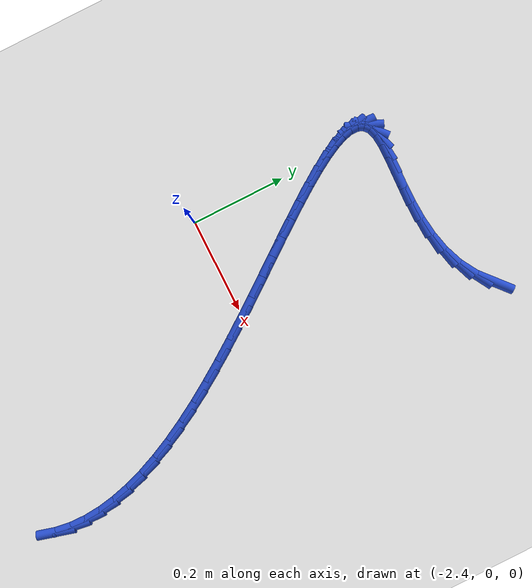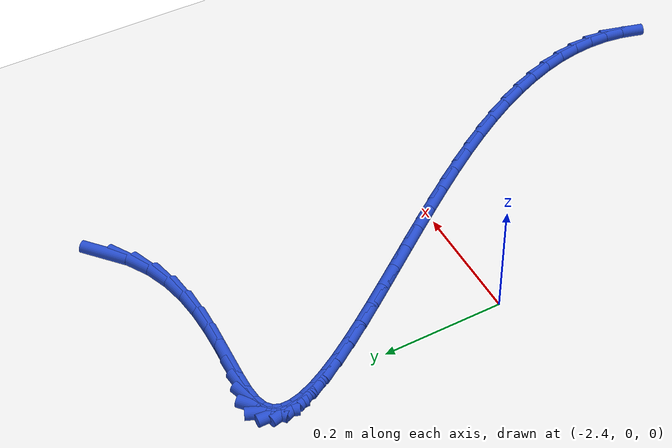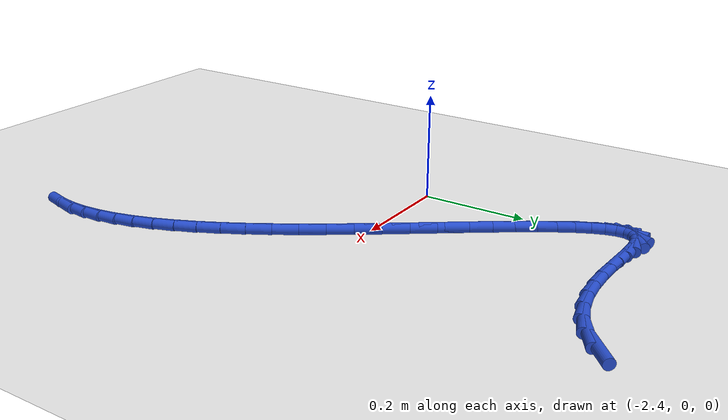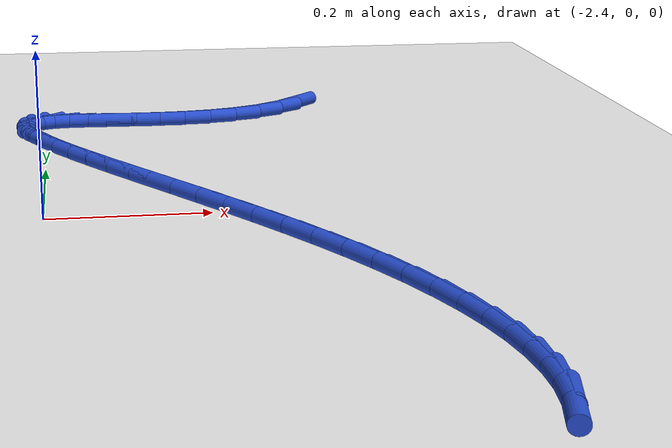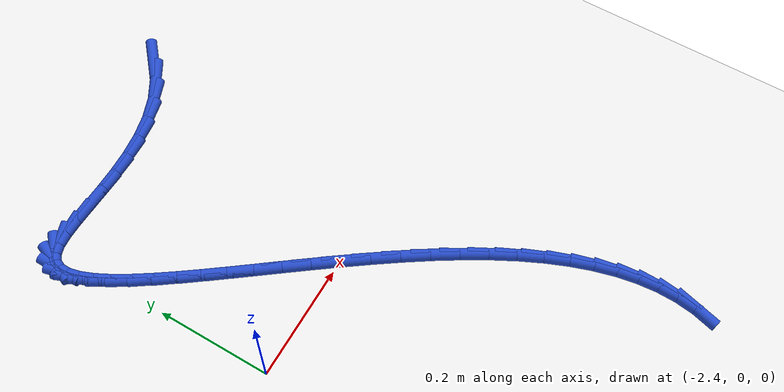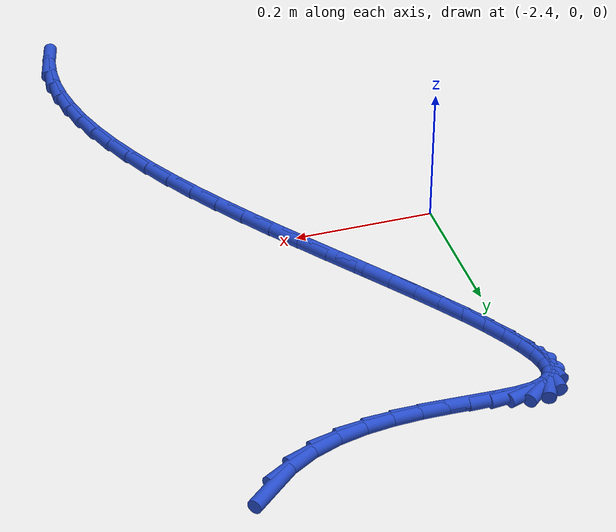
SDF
<sdf version="1.6">
 <world name="default">
  <model name="ground_plane">
   <static>1</static>
   <link name="link">
    <collision name="collision">
     <geometry><plane><normal>0 0 1</normal><size>100 100</size></plane></geometry>
     <surface><friction><ode><mu>100</mu><mu2>50</mu2></ode></friction></surface>
    </collision>
    <visual name="visual">
     <cast_shadows>0</cast_shadows>
     <geometry><plane><normal>0 0 1</normal><size>100 100</size></plane></geometry>
     <material>
      <script><uri>file://media/materials/scripts/gazebo.material</uri><name>Gazebo/WhiteGlow</name></script>
     </material>
    </visual>
   </link>
  </model>
  <model name="line">
   <link name="link_108">
    <pose>-2.015298959114239 0.4899913819780547 0.01 0 1.57 0.7166317685493195</pose>
    <collision name="collision">
     <geometry><cylinder><radius>0.01</radius><length>0.08</length></cylinder></geometry>
    </collision>
    <visual name="visual">
     <material>
      <script><name>Gazebo/Blue</name><uri>file://media/materials/scripts/gazebo.material</uri></script>
     </material>
     <geometry><cylinder><radius>0.01</radius><length>0.08</length></cylinder></geometry>
    </visual>
   </link>
   <link name="link_109">
    <pose>-2.0476901878978517 0.46177453415777336 0.01 0 1.57 0.5310653812693478</pose>
    <collision name="collision">
     <geometry><cylinder><radius>0.01</radius><length>0.08</length></cylinder></geometry>
    </collision>
    <visual name="visual">
     <material>
      <script><name>Gazebo/Blue</name><uri>file://media/materials/scripts/gazebo.material</uri></script>
     </material>
     <geometry><cylinder><radius>0.01</radius><length>0.08</length></cylinder></geometry>
    </visual>
   </link>
   <link name="link_110">
    <pose>-2.083063736103199 0.4409979148480255 0.01 0 1.57 0.36715814371708166</pose>
    <collision name="collision">
     <geometry><cylinder><radius>0.01</radius><length>0.08</length></cylinder></geometry>
    </collision>
    <visual name="visual">
     <material>
      <script><name>Gazebo/Blue</name><uri>file://media/materials/scripts/gazebo.material</uri></script>
     </material>
     <geometry><cylinder><radius>0.01</radius><length>0.08</length></cylinder></geometry>
    </visual>
   </link>
   <link name="link_111">
    <pose>-2.1205421452686104 0.42658381711622495 0.01 0 1.57 0.23162998639850688</pose>
    <collision name="collision">
     <geometry><cylinder><radius>0.01</radius><length>0.08</length></cylinder></geometry>
    </collision>
    <visual name="visual">
     <material>
      <script><name>Gazebo/Blue</name><uri>file://media/materials/scripts/gazebo.material</uri></script>
     </material>
     <geometry><cylinder><radius>0.01</radius><length>0.08</length></cylinder></geometry>
    </visual>
   </link>
   <link name="link_112">
    <pose>-2.1592479569324166 0.41745453402978683 0.01 0 1.57 0.1253684771747428</pose>
    <collision name="collision">
     <geometry><cylinder><radius>0.01</radius><length>0.08</length></cylinder></geometry>
    </collision>
    <visual name="visual">
     <material>
      <script><name>Gazebo/Blue</name><uri>file://media/materials/scripts/gazebo.material</uri></script>
     </material>
     <geometry><cylinder><radius>0.01</radius><length>0.08</length></cylinder></geometry>
    </visual>
   </link>
   <link name="link_113">
    <pose>-2.198303712632948 0.4125323586561253 0.01 0 1.57 0.04649790185605832</pose>
    <collision name="collision">
     <geometry><cylinder><radius>0.01</radius><length>0.08</length></cylinder></geometry>
    </collision>
    <visual name="visual">
     <material>
      <script><name>Gazebo/Blue</name><uri>file://media/materials/scripts/gazebo.material</uri></script>
     </material>
     <geometry><cylinder><radius>0.01</radius><length>0.08</length></cylinder></geometry>
    </visual>
   </link>
   <link name="link_114">
    <pose>-2.2368319539085357 0.41073958406265504 0.01 0 1.57 -0.006974468228066487</pose>
    <collision name="collision">
     <geometry><cylinder><radius>0.01</radius><length>0.08</length></cylinder></geometry>
    </collision>
    <visual name="visual">
     <material>
      <script><name>Gazebo/Blue</name><uri>file://media/materials/scripts/gazebo.material</uri></script>
     </material>
     <geometry><cylinder><radius>0.01</radius><length>0.08</length></cylinder></geometry>
    </visual>
   </link>
   <link name="link_115">
    <pose>-2.2739552222975092 0.4109985033167905 0.01 0 1.57 -0.03537205286145952</pose>
    <collision name="collision">
     <geometry><cylinder><radius>0.01</radius><length>0.08</length></cylinder></geometry>
    </collision>
    <visual name="visual">
     <material>
      <script><name>Gazebo/Blue</name><uri>file://media/materials/scripts/gazebo.material</uri></script>
     </material>
     <geometry><cylinder><radius>0.01</radius><length>0.08</length></cylinder></geometry>
    </visual>
   </link>
   <link name="link_116">
    <pose>-2.3087960593382 0.41223140948594633 0.01 0 1.57 -0.035627354861227756</pose>
    <collision name="collision">
     <geometry><cylinder><radius>0.01</radius><length>0.08</length></cylinder></geometry>
    </collision>
    <visual name="visual">
     <material>
      <script><name>Gazebo/Blue</name><uri>file://media/materials/scripts/gazebo.material</uri></script>
     </material>
     <geometry><cylinder><radius>0.01</radius><length>0.08</length></cylinder></geometry>
    </visual>
   </link>
   <link name="link_117">
    <pose>-2.340477006568938 0.4133605956375369 0.01 0 1.57 0.0018897950461369665</pose>
    <collision name="collision">
     <geometry><cylinder><radius>0.01</radius><length>0.08</length></cylinder></geometry>
    </collision>
    <visual name="visual">
     <material>
      <script><name>Gazebo/Blue</name><uri>file://media/materials/scripts/gazebo.material</uri></script>
     </material>
     <geometry><cylinder><radius>0.01</radius><length>0.08</length></cylinder></geometry>
    </visual>
   </link>
   <link name="link_118">
    <pose>-2.3681206055280537 0.41330835483897693 0.01 0 1.57 0.10134528753123172</pose>
    <collision name="collision">
     <geometry><cylinder><radius>0.01</radius><length>0.08</length></cylinder></geometry>
    </collision>
    <visual name="visual">
     <material>
      <script><name>Gazebo/Blue</name><uri>file://media/materials/scripts/gazebo.material</uri></script>
     </material>
     <geometry><cylinder><radius>0.01</radius><length>0.08</length></cylinder></geometry>
    </visual>
   </link>
   <link name="link_119">
    <pose>-2.3908493977538763 0.41099698015768066 0.01 0 1.57 0.3201868895209495</pose>
    <collision name="collision">
     <geometry><cylinder><radius>0.01</radius><length>0.08</length></cylinder></geometry>
    </collision>
    <visual name="visual">
     <material>
      <script><name>Gazebo/Blue</name><uri>file://media/materials/scripts/gazebo.material</uri></script>
     </material>
     <geometry><cylinder><radius>0.01</radius><length>0.08</length></cylinder></geometry>
    </visual>
   </link>
   <link name="link_120">
    <pose>-2.407810113355844 0.4053728606023508 0.01 0 1.57 0.7086020671013058</pose>
    <collision name="collision">
     <geometry><cylinder><radius>0.01</radius><length>0.08</length></cylinder></geometry>
    </collision>
    <visual name="visual">
     <material>
      <script><name>Gazebo/Blue</name><uri>file://media/materials/scripts/gazebo.material</uri></script>
     </material>
     <geometry><cylinder><radius>0.01</radius><length>0.08</length></cylinder></geometry>
    </visual>
   </link>
   <link name="link_121">
    <pose>-2.4187584559558943 0.39598902663804186 0.01 0 1.57 1.1803394276701753</pose>
    <collision name="collision">
     <geometry><cylinder><radius>0.01</radius><length>0.08</length></cylinder></geometry>
    </collision>
    <visual name="visual">
     <material>
      <script><name>Gazebo/Blue</name><uri>file://media/materials/scripts/gazebo.material</uri></script>
     </material>
     <geometry><cylinder><radius>0.01</radius><length>0.08</length></cylinder></geometry>
    </visual>
   </link>
   <link name="link_122">
    <pose>-2.4240898651629985 0.3830357948561994 0.01 0 1.57 1.5621926588677681</pose>
    <collision name="collision">
     <geometry><cylinder><radius>0.01</radius><length>0.08</length></cylinder></geometry>
    </collision>
    <visual name="visual">
     <material>
      <script><name>Gazebo/Blue</name><uri>file://media/materials/scripts/gazebo.material</uri></script>
     </material>
     <geometry><cylinder><radius>0.01</radius><length>0.08</length></cylinder></geometry>
    </visual>
   </link>
   <link name="link_123">
    <pose>-2.4242301263365347 0.3667337113900159 0.01 0 1.57 -1.3371106961654604</pose>
    <collision name="collision">
     <geometry><cylinder><radius>0.01</radius><length>0.08</length></cylinder></geometry>
    </collision>
    <visual name="visual">
     <material>
      <script><name>Gazebo/Blue</name><uri>file://media/materials/scripts/gazebo.material</uri></script>
     </material>
     <geometry><cylinder><radius>0.01</radius><length>0.08</length></cylinder></geometry>
    </visual>
   </link>
   <link name="link_124">
    <pose>-2.4196050248358785 0.3473033223726839 0.01 0 1.57 -1.1891551168606078</pose>
    <collision name="collision">
     <geometry><cylinder><radius>0.01</radius><length>0.08</length></cylinder></geometry>
    </collision>
    <visual name="visual">
     <material>
      <script><name>Gazebo/Blue</name><uri>file://media/materials/scripts/gazebo.material</uri></script>
     </material>
     <geometry><cylinder><radius>0.01</radius><length>0.08</length></cylinder></geometry>
    </visual>
   </link>
   <link name="link_125">
    <pose>-2.4106403460204056 0.32496517393739593 0.01 0 1.57 -1.0955237975052767</pose>
    <collision name="collision">
     <geometry><cylinder><radius>0.01</radius><length>0.08</length></cylinder></geometry>
    </collision>
    <visual name="visual">
     <material>
      <script><name>Gazebo/Blue</name><uri>file://media/materials/scripts/gazebo.material</uri></script>
     </material>
     <geometry><cylinder><radius>0.01</radius><length>0.08</length></cylinder></geometry>
    </visual>
   </link>
   <link name="link_126">
    <pose>-2.397761875249494 0.2999398122173445 0.01 0 1.57 -1.033827183980058</pose>
    <collision name="collision">
     <geometry><cylinder><radius>0.01</radius><length>0.08</length></cylinder></geometry>
    </collision>
    <visual name="visual">
     <material>
      <script><name>Gazebo/Blue</name><uri>file://media/materials/scripts/gazebo.material</uri></script>
     </material>
     <geometry><cylinder><radius>0.01</radius><length>0.08</length></cylinder></geometry>
    </visual>
   </link>
   <link name="link_127">
    <pose>-2.3813953978825175 0.27244778334572195 0.01 0 1.57 -0.9920867078961944</pose>
    <collision name="collision">
     <geometry><cylinder><radius>0.01</radius><length>0.08</length></cylinder></geometry>
    </collision>
    <visual name="visual">
     <material>
      <script><name>Gazebo/Blue</name><uri>file://media/materials/scripts/gazebo.material</uri></script>
     </material>
     <geometry><cylinder><radius>0.01</radius><length>0.08</length></cylinder></geometry>
    </visual>
   </link>
   <link name="link_128">
    <pose>-2.361966699278854 0.24270963345572094 0.01 0 1.57 -0.9636601649612327</pose>
    <collision name="collision">
     <geometry><cylinder><radius>0.01</radius><length>0.08</length></cylinder></geometry>
    </collision>
    <visual name="visual">
     <material>
      <script><name>Gazebo/Blue</name><uri>file://media/materials/scripts/gazebo.material</uri></script>
     </material>
     <geometry><cylinder><radius>0.01</radius><length>0.08</length></cylinder></geometry>
    </visual>
   </link>
   <link name="link_129">
    <pose>-2.3399015647978803 0.21094590868053398 0.01 0 1.57 -0.944691238788331</pose>
    <collision name="collision">
     <geometry><cylinder><radius>0.01</radius><length>0.08</length></cylinder></geometry>
    </collision>
    <visual name="visual">
     <material>
      <script><name>Gazebo/Blue</name><uri>file://media/materials/scripts/gazebo.material</uri></script>
     </material>
     <geometry><cylinder><radius>0.01</radius><length>0.08</length></cylinder></geometry>
    </visual>
   </link>
   <link name="link_130">
    <pose>-2.3156257797989706 0.1773771551533535 0.01 0 1.57 -0.9328579403573007</pose>
    <collision name="collision">
     <geometry><cylinder><radius>0.01</radius><length>0.08</length></cylinder></geometry>
    </collision>
    <visual name="visual">
     <material>
      <script><name>Gazebo/Blue</name><uri>file://media/materials/scripts/gazebo.material</uri></script>
     </material>
     <geometry><cylinder><radius>0.01</radius><length>0.08</length></cylinder></geometry>
    </visual>
   </link>
   <link name="link_131">
    <pose>-2.2895651296415043 0.14222391900737216 0.01 0 1.57 -0.9267372400692406</pose>
    <collision name="collision">
     <geometry><cylinder><radius>0.01</radius><length>0.08</length></cylinder></geometry>
    </collision>
    <visual name="visual">
     <material>
      <script><name>Gazebo/Blue</name><uri>file://media/materials/scripts/gazebo.material</uri></script>
     </material>
     <geometry><cylinder><radius>0.01</radius><length>0.08</length></cylinder></geometry>
    </visual>
   </link>
   <link name="link_132">
    <pose>-2.262145399684855 0.10570674637578228 0.01 0 1.57 -0.9254691436035736</pose>
    <collision name="collision">
     <geometry><cylinder><radius>0.01</radius><length>0.08</length></cylinder></geometry>
    </collision>
    <visual name="visual">
     <material>
      <script><name>Gazebo/Blue</name><uri>file://media/materials/scripts/gazebo.material</uri></script>
     </material>
     <geometry><cylinder><radius>0.01</radius><length>0.08</length></cylinder></geometry>
    </visual>
   </link>
   <link name="link_133">
    <pose>-2.2337923752884 0.06804618339177648 0.01 0 1.57 -0.928574039332982</pose>
    <collision name="collision">
     <geometry><cylinder><radius>0.01</radius><length>0.08</length></cylinder></geometry>
    </collision>
    <visual name="visual">
     <material>
      <script><name>Gazebo/Blue</name><uri>file://media/materials/scripts/gazebo.material</uri></script>
     </material>
     <geometry><cylinder><radius>0.01</radius><length>0.08</length></cylinder></geometry>
    </visual>
   </link>
   <link name="link_134">
    <pose>-2.204931841811517 0.02946277618854723 0.01 0 1.57 -0.9358538095394527</pose>
    <collision name="collision">
     <geometry><cylinder><radius>0.01</radius><length>0.08</length></cylinder></geometry>
    </collision>
    <visual name="visual">
     <material>
      <script><name>Gazebo/Blue</name><uri>file://media/materials/scripts/gazebo.material</uri></script>
     </material>
     <geometry><cylinder><radius>0.01</radius><length>0.08</length></cylinder></geometry>
    </visual>
   </link>
   <link name="link_135">
    <pose>-2.175989584613579 -0.00982292910071296 0.01 0 1.57 -0.9473427685160364</pose>
    <collision name="collision">
     <geometry><cylinder><radius>0.01</radius><length>0.08</length></cylinder></geometry>
    </collision>
    <visual name="visual">
     <material>
      <script><name>Gazebo/Blue</name><uri>file://media/materials/scripts/gazebo.material</uri></script>
     </material>
     <geometry><cylinder><radius>0.01</radius><length>0.08</length></cylinder></geometry>
    </visual>
   </link>
   <link name="link_136">
    <pose>-2.1473913890539653 -0.04959038634281161 0.01 0 1.57 -0.9632920012523831</pose>
    <collision name="collision">
     <geometry><cylinder><radius>0.01</radius><length>0.08</length></cylinder></geometry>
    </collision>
    <visual name="visual">
     <material>
      <script><name>Gazebo/Blue</name><uri>file://media/materials/scripts/gazebo.material</uri></script>
     </material>
     <geometry><cylinder><radius>0.01</radius><length>0.08</length></cylinder></geometry>
    </visual>
   </link>
   <link name="link_137">
    <pose>-2.1195630404920514 -0.08961904940455613 0.01 0 1.57 -0.9841800840778417</pose>
    <collision name="collision">
     <geometry><cylinder><radius>0.01</radius><length>0.08</length></cylinder></geometry>
    </collision>
    <visual name="visual">
     <material>
      <script><name>Gazebo/Blue</name><uri>file://media/materials/scripts/gazebo.material</uri></script>
     </material>
     <geometry><cylinder><radius>0.01</radius><length>0.08</length></cylinder></geometry>
    </visual>
   </link>
   <link name="link_138">
    <pose>-2.092930324287213 -0.12968837215275408 0.01 0 1.57 -1.0107489103215541</pose>
    <collision name="collision">
     <geometry><cylinder><radius>0.01</radius><length>0.08</length></cylinder></geometry>
    </collision>
    <visual name="visual">
     <material>
      <script><name>Gazebo/Blue</name><uri>file://media/materials/scripts/gazebo.material</uri></script>
     </material>
     <geometry><cylinder><radius>0.01</radius><length>0.08</length></cylinder></geometry>
    </visual>
   </link>
   <link name="link_139">
    <pose>-2.067919025798828 -0.16957780845421294 0.01 0 1.57 -1.0438752785889154</pose>
    <collision name="collision">
     <geometry><cylinder><radius>0.01</radius><length>0.08</length></cylinder></geometry>
    </collision>
    <visual name="visual">
     <material>
      <script><name>Gazebo/Blue</name><uri>file://media/materials/scripts/gazebo.material</uri></script>
     </material>
     <geometry><cylinder><radius>0.01</radius><length>0.08</length></cylinder></geometry>
    </visual>
   </link>
   <link name="link_140">
    <pose>-2.0449382692436684 -0.2090779992255332 0.01 0 1.57 -1.0831270516812643</pose>
    <collision name="collision">
     <geometry><cylinder><radius>0.01</radius><length>0.08</length></cylinder></geometry>
    </collision>
    <visual name="visual">
     <material>
      <script><name>Gazebo/Blue</name><uri>file://media/materials/scripts/gazebo.material</uri></script>
     </material>
     <geometry><cylinder><radius>0.01</radius><length>0.08</length></cylinder></geometry>
    </visual>
   </link>
   <link name="link_141">
    <pose>-2.024253927935209 -0.248075770562594 0.01 0 1.57 -1.128617306497553</pose>
    <collision name="collision">
     <geometry><cylinder><radius>0.01</radius><length>0.08</length></cylinder></geometry>
    </collision>
    <visual name="visual">
     <material>
      <script><name>Gazebo/Blue</name><uri>file://media/materials/scripts/gazebo.material</uri></script>
     </material>
     <geometry><cylinder><radius>0.01</radius><length>0.08</length></cylinder></geometry>
    </visual>
   </link>
   <link name="link_142">
    <pose>-2.0060588567928512 -0.28650697643588136 0.01 0 1.57 -1.1813556982441324</pose>
    <collision name="collision">
     <geometry><cylinder><radius>0.01</radius><length>0.08</length></cylinder></geometry>
    </collision>
    <visual name="visual">
     <material>
      <script><name>Gazebo/Blue</name><uri>file://media/materials/scripts/gazebo.material</uri></script>
     </material>
     <geometry><cylinder><radius>0.01</radius><length>0.08</length></cylinder></geometry>
    </visual>
   </link>
   <link name="link_143">
    <pose>-1.9905453290329511 -0.3243078613977926 0.01 0 1.57 -1.2424927524314395</pose>
    <collision name="collision">
     <geometry><cylinder><radius>0.01</radius><length>0.08</length></cylinder></geometry>
    </collision>
    <visual name="visual">
     <material>
      <script><name>Gazebo/Blue</name><uri>file://media/materials/scripts/gazebo.material</uri></script>
     </material>
     <geometry><cylinder><radius>0.01</radius><length>0.08</length></cylinder></geometry>
    </visual>
   </link>
   <link name="link_144">
    <pose>-1.9779056178718657 -0.36141467000072536 0.01 0 1.57 -1.3132641868184534</pose>
    <collision name="collision">
     <geometry><cylinder><radius>0.01</radius><length>0.08</length></cylinder></geometry>
    </collision>
    <visual name="visual">
     <material>
      <script><name>Gazebo/Blue</name><uri>file://media/materials/scripts/gazebo.material</uri></script>
     </material>
     <geometry><cylinder><radius>0.01</radius><length>0.08</length></cylinder></geometry>
    </visual>
   </link>
   <link name="link_145">
    <pose>-1.9683319965259516 -0.39776364679707593 0.01 0 1.57 -1.3948764024788969</pose>
    <collision name="collision">
     <geometry><cylinder><radius>0.01</radius><length>0.08</length></cylinder></geometry>
    </collision>
    <visual name="visual">
     <material>
      <script><name>Gazebo/Blue</name><uri>file://media/materials/scripts/gazebo.material</uri></script>
     </material>
     <geometry><cylinder><radius>0.01</radius><length>0.08</length></cylinder></geometry>
    </visual>
   </link>
   <link name="link_146">
    <pose>-1.9620167382115654 -0.43329103633924415 0.01 0 1.57 -1.4882919836608417</pose>
    <collision name="collision">
     <geometry><cylinder><radius>0.01</radius><length>0.08</length></cylinder></geometry>
    </collision>
    <visual name="visual">
     <material>
      <script><name>Gazebo/Blue</name><uri>file://media/materials/scripts/gazebo.material</uri></script>
     </material>
     <geometry><cylinder><radius>0.01</radius><length>0.08</length></cylinder></geometry>
    </visual>
   </link>
   <link name="link_147">
    <pose>-1.9591521161450638 -0.4679330831796264 0.01 0 1.57 1.547701019162076</pose>
    <collision name="collision">
     <geometry><cylinder><radius>0.01</radius><length>0.08</length></cylinder></geometry>
    </collision>
    <visual name="visual">
     <material>
      <script><name>Gazebo/Blue</name><uri>file://media/materials/scripts/gazebo.material</uri></script>
     </material>
     <geometry><cylinder><radius>0.01</radius><length>0.08</length></cylinder></geometry>
    </visual>
   </link>
   <link name="link_148">
    <pose>-1.9599304035428042 -0.5016260318706203 0.01 0 1.57 1.430552429653786</pose>
    <collision name="collision">
     <geometry><cylinder><radius>0.01</radius><length>0.08</length></cylinder></geometry>
    </collision>
    <visual name="visual">
     <material>
      <script><name>Gazebo/Blue</name><uri>file://media/materials/scripts/gazebo.material</uri></script>
     </material>
     <geometry><cylinder><radius>0.01</radius><length>0.08</length></cylinder></geometry>
    </visual>
   </link>
   <link name="link_149">
    <pose>-1.9645438736211425 -0.534306126964623 0.01 0 1.57 1.3039025418438799</pose>
    <collision name="collision">
     <geometry><cylinder><radius>0.01</radius><length>0.08</length></cylinder></geometry>
    </collision>
    <visual name="visual">
     <material>
      <script><name>Gazebo/Blue</name><uri>file://media/materials/scripts/gazebo.material</uri></script>
     </material>
     <geometry><cylinder><radius>0.01</radius><length>0.08</length></cylinder></geometry>
    </visual>
   </link>
  </model>
 </world>
</sdf>
